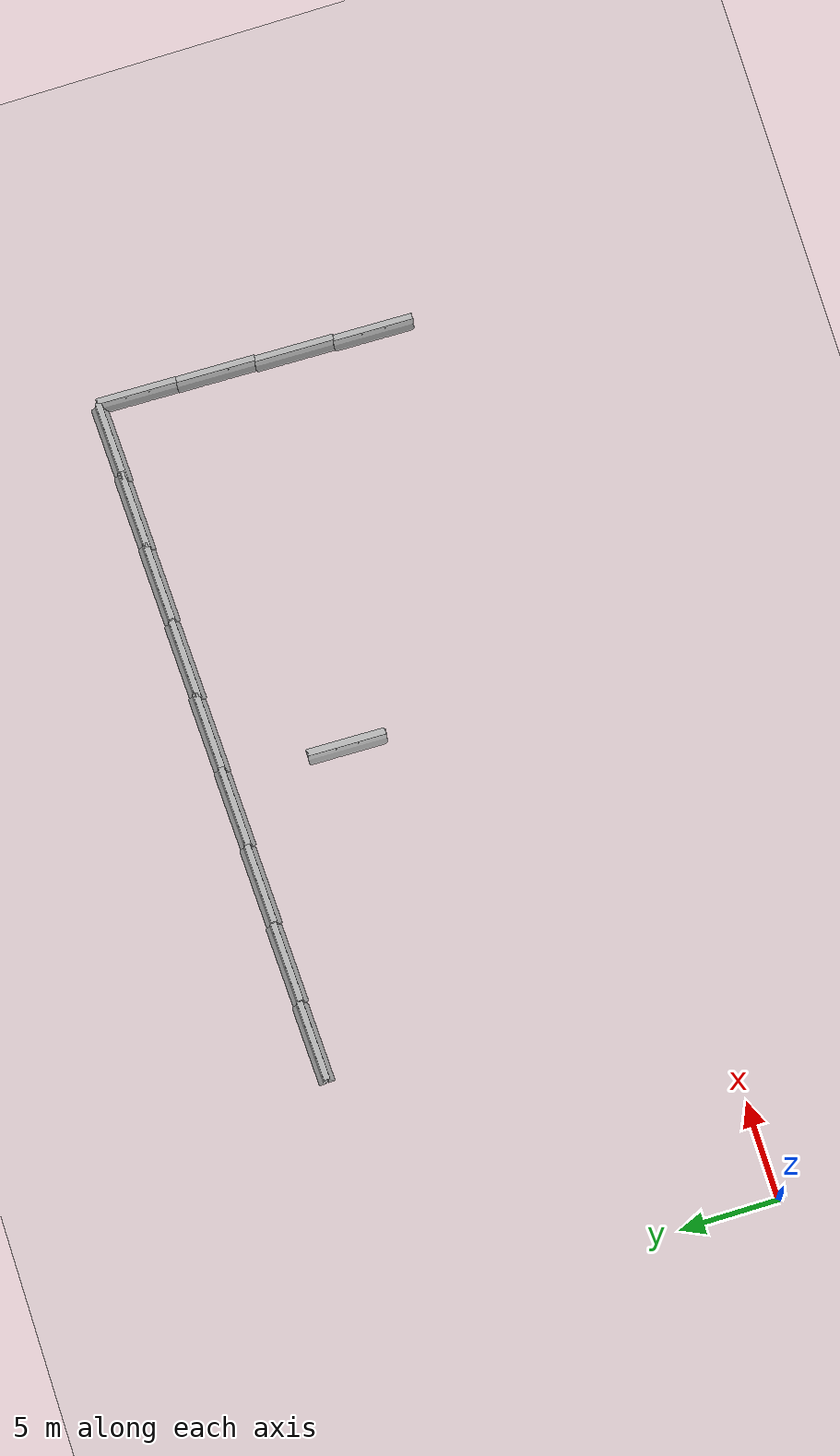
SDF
<sdf version="1.6">
 <world name="default">
  <model name="ground_plane">
   <static>1</static>
   <link name="link">
    <collision name="collision">
     <geometry><plane><normal>0 0 1</normal><size>100 100</size></plane></geometry>
     <surface><friction><ode><mu>100</mu><mu2>50</mu2></ode></friction></surface>
    </collision>
    <visual name="visual">
     <cast_shadows>0</cast_shadows>
     <geometry><plane><normal>0 0 1</normal><size>100 100</size></plane></geometry>
     <material>
      <script><uri>file://media/materials/scripts/gazebo.material</uri><name>Gazebo/Grey</name></script>
     </material>
    </visual>
   </link>
  </model>
  <model name="jersey_barrier_clone_clone_clone_3_clone_clone_2">
   <static>1</static>
   <link name="link">
    <visual name="visual">
     <geometry>
      <mesh><uri>model://jersey_barrier/meshes/jersey_barrier.dae</uri><scale>1 1 1</scale></mesh>
     </geometry>
    </visual>
    <collision name="upright">
     <pose>0 0 0.5715 0 -0 0</pose>
     <geometry><box><size>4.06542 0.3063 1.143</size></box></geometry>
    </collision>
    <collision name="base">
     <pose>0 0 0.032258 0 -0 0</pose>
     <geometry><box><size>4.06542 0.8107 0.064516</size></box></geometry>
    </collision>
    <collision name="base2">
     <pose>0 0 0.1 0 -0 0</pose>
     <geometry><box><size>4.06542 0.65 0.1</size></box></geometry>
    </collision>
    <collision name="base3">
     <pose>0 0 0.2 0 -0 0</pose>
     <geometry><box><size>4.06542 0.5 0.1</size></box></geometry>
    </collision>
    <collision name="left-angle">
     <pose>0 -0.224 0.2401 0.9 -0 0</pose>
     <geometry><box><size>4.06542 0.5 0.064516</size></box></geometry>
    </collision>
    <collision name="right-angle">
     <pose>0 0.224 0.2401 -0.9 0 0</pose>
     <geometry><box><size>4.06542 0.5 0.064516</size></box></geometry>
    </collision>
   </link>
   <pose>29.0417 12.8143 -8.43284 0 0 -1.5926</pose>
  </model>
  <model name="jersey_barrier_clone_clone_clone_clone_0">
   <static>1</static>
   <link name="link">
    <visual name="visual">
     <geometry>
      <mesh><uri>model://jersey_barrier/meshes/jersey_barrier.dae</uri><scale>1 1 1</scale></mesh>
     </geometry>
    </visual>
    <collision name="upright">
     <pose>0 0 0.5715 0 -0 0</pose>
     <geometry><box><size>4.06542 0.3063 1.143</size></box></geometry>
    </collision>
    <collision name="base">
     <pose>0 0 0.032258 0 -0 0</pose>
     <geometry><box><size>4.06542 0.8107 0.064516</size></box></geometry>
    </collision>
    <collision name="base2">
     <pose>0 0 0.1 0 -0 0</pose>
     <geometry><box><size>4.06542 0.65 0.1</size></box></geometry>
    </collision>
    <collision name="base3">
     <pose>0 0 0.2 0 -0 0</pose>
     <geometry><box><size>4.06542 0.5 0.1</size></box></geometry>
    </collision>
    <collision name="left-angle">
     <pose>0 -0.224 0.2401 0.9 -0 0</pose>
     <geometry><box><size>4.06542 0.5 0.064516</size></box></geometry>
    </collision>
    <collision name="right-angle">
     <pose>0 0.224 0.2401 -0.9 0 0</pose>
     <geometry><box><size>4.06542 0.5 0.064516</size></box></geometry>
    </collision>
   </link>
   <pose>26.0844 19.3245 0 0 -0 0.033275</pose>
  </model>
  <model name="jersey_barrier_clone_clone_clone_clone_0_clone">
   <static>1</static>
   <link name="link">
    <visual name="visual">
     <geometry>
      <mesh><uri>model://jersey_barrier/meshes/jersey_barrier.dae</uri><scale>1 1 1</scale></mesh>
     </geometry>
    </visual>
    <collision name="upright">
     <pose>0 0 0.5715 0 -0 0</pose>
     <geometry><box><size>4.06542 0.3063 1.143</size></box></geometry>
    </collision>
    <collision name="base">
     <pose>0 0 0.032258 0 -0 0</pose>
     <geometry><box><size>4.06542 0.8107 0.064516</size></box></geometry>
    </collision>
    <collision name="base2">
     <pose>0 0 0.1 0 -0 0</pose>
     <geometry><box><size>4.06542 0.65 0.1</size></box></geometry>
    </collision>
    <collision name="base3">
     <pose>0 0 0.2 0 -0 0</pose>
     <geometry><box><size>4.06542 0.5 0.1</size></box></geometry>
    </collision>
    <collision name="left-angle">
     <pose>0 -0.224 0.2401 0.9 -0 0</pose>
     <geometry><box><size>4.06542 0.5 0.064516</size></box></geometry>
    </collision>
    <collision name="right-angle">
     <pose>0 0.224 0.2401 -0.9 0 0</pose>
     <geometry><box><size>4.06542 0.5 0.064516</size></box></geometry>
    </collision>
   </link>
   <pose>22.068 19.2501 0 0 -0 0.033275</pose>
  </model>
  <model name="jersey_barrier_clone_clone_clone_clone_0_clone_0">
   <static>1</static>
   <link name="link">
    <visual name="visual">
     <geometry>
      <mesh><uri>model://jersey_barrier/meshes/jersey_barrier.dae</uri><scale>1 1 1</scale></mesh>
     </geometry>
    </visual>
    <collision name="upright">
     <pose>0 0 0.5715 0 -0 0</pose>
     <geometry><box><size>4.06542 0.3063 1.143</size></box></geometry>
    </collision>
    <collision name="base">
     <pose>0 0 0.032258 0 -0 0</pose>
     <geometry><box><size>4.06542 0.8107 0.064516</size></box></geometry>
    </collision>
    <collision name="base2">
     <pose>0 0 0.1 0 -0 0</pose>
     <geometry><box><size>4.06542 0.65 0.1</size></box></geometry>
    </collision>
    <collision name="base3">
     <pose>0 0 0.2 0 -0 0</pose>
     <geometry><box><size>4.06542 0.5 0.1</size></box></geometry>
    </collision>
    <collision name="left-angle">
     <pose>0 -0.224 0.2401 0.9 -0 0</pose>
     <geometry><box><size>4.06542 0.5 0.064516</size></box></geometry>
    </collision>
    <collision name="right-angle">
     <pose>0 0.224 0.2401 -0.9 0 0</pose>
     <geometry><box><size>4.06542 0.5 0.064516</size></box></geometry>
    </collision>
   </link>
   <pose>18.0097 19.1749 0 0 -0 0.033275</pose>
  </model>
  <model name="jersey_barrier_clone_clone_clone_clone_0_clone_0_clone">
   <static>1</static>
   <link name="link">
    <visual name="visual">
     <geometry>
      <mesh><uri>model://jersey_barrier/meshes/jersey_barrier.dae</uri><scale>1 1 1</scale></mesh>
     </geometry>
    </visual>
    <collision name="upright">
     <pose>0 0 0.5715 0 -0 0</pose>
     <geometry><box><size>4.06542 0.3063 1.143</size></box></geometry>
    </collision>
    <collision name="base">
     <pose>0 0 0.032258 0 -0 0</pose>
     <geometry><box><size>4.06542 0.8107 0.064516</size></box></geometry>
    </collision>
    <collision name="base2">
     <pose>0 0 0.1 0 -0 0</pose>
     <geometry><box><size>4.06542 0.65 0.1</size></box></geometry>
    </collision>
    <collision name="base3">
     <pose>0 0 0.2 0 -0 0</pose>
     <geometry><box><size>4.06542 0.5 0.1</size></box></geometry>
    </collision>
    <collision name="left-angle">
     <pose>0 -0.224 0.2401 0.9 -0 0</pose>
     <geometry><box><size>4.06542 0.5 0.064516</size></box></geometry>
    </collision>
    <collision name="right-angle">
     <pose>0 0.224 0.2401 -0.9 0 0</pose>
     <geometry><box><size>4.06542 0.5 0.064516</size></box></geometry>
    </collision>
   </link>
   <pose>13.949 19.1026 0 0 -0 0.033275</pose>
  </model>
  <model name="jersey_barrier_clone_clone_clone_clone_clone_2">
   <static>1</static>
   <link name="link">
    <visual name="visual">
     <geometry>
      <mesh><uri>model://jersey_barrier/meshes/jersey_barrier.dae</uri><scale>1 1 1</scale></mesh>
     </geometry>
    </visual>
    <collision name="upright">
     <pose>0 0 0.5715 0 -0 0</pose>
     <geometry><box><size>4.06542 0.3063 1.143</size></box></geometry>
    </collision>
    <collision name="base">
     <pose>0 0 0.032258 0 -0 0</pose>
     <geometry><box><size>4.06542 0.8107 0.064516</size></box></geometry>
    </collision>
    <collision name="base2">
     <pose>0 0 0.1 0 -0 0</pose>
     <geometry><box><size>4.06542 0.65 0.1</size></box></geometry>
    </collision>
    <collision name="base3">
     <pose>0 0 0.2 0 -0 0</pose>
     <geometry><box><size>4.06542 0.5 0.1</size></box></geometry>
    </collision>
    <collision name="left-angle">
     <pose>0 -0.224 0.2401 0.9 -0 0</pose>
     <geometry><box><size>4.06542 0.5 0.064516</size></box></geometry>
    </collision>
    <collision name="right-angle">
     <pose>0 0.224 0.2401 -0.9 0 0</pose>
     <geometry><box><size>4.06542 0.5 0.064516</size></box></geometry>
    </collision>
   </link>
   <pose>29.9689 19.42 0 0 -0 0.033275</pose>
  </model>
  <model name="jersey_barrier_clone_clone_clone_clone_clone_3">
   <static>1</static>
   <link name="link">
    <visual name="visual">
     <geometry>
      <mesh><uri>model://jersey_barrier/meshes/jersey_barrier.dae</uri><scale>1 1 1</scale></mesh>
     </geometry>
    </visual>
    <collision name="upright">
     <pose>0 0 0.5715 0 -0 0</pose>
     <geometry><box><size>4.06542 0.3063 1.143</size></box></geometry>
    </collision>
    <collision name="base">
     <pose>0 0 0.032258 0 -0 0</pose>
     <geometry><box><size>4.06542 0.8107 0.064516</size></box></geometry>
    </collision>
    <collision name="base2">
     <pose>0 0 0.1 0 -0 0</pose>
     <geometry><box><size>4.06542 0.65 0.1</size></box></geometry>
    </collision>
    <collision name="base3">
     <pose>0 0 0.2 0 -0 0</pose>
     <geometry><box><size>4.06542 0.5 0.1</size></box></geometry>
    </collision>
    <collision name="left-angle">
     <pose>0 -0.224 0.2401 0.9 -0 0</pose>
     <geometry><box><size>4.06542 0.5 0.064516</size></box></geometry>
    </collision>
    <collision name="right-angle">
     <pose>0 0.224 0.2401 -0.9 0 0</pose>
     <geometry><box><size>4.06542 0.5 0.064516</size></box></geometry>
    </collision>
   </link>
   <pose>33.7558 19.4801 0 0 -0 0.033275</pose>
  </model>
  <model name="jersey_barrier_clone_clone_clone_clone_clone_4">
   <static>1</static>
   <link name="link">
    <visual name="visual">
     <geometry>
      <mesh><uri>model://jersey_barrier/meshes/jersey_barrier.dae</uri><scale>1 1 1</scale></mesh>
     </geometry>
    </visual>
    <collision name="upright">
     <pose>0 0 0.5715 0 -0 0</pose>
     <geometry><box><size>4.06542 0.3063 1.143</size></box></geometry>
    </collision>
    <collision name="base">
     <pose>0 0 0.032258 0 -0 0</pose>
     <geometry><box><size>4.06542 0.8107 0.064516</size></box></geometry>
    </collision>
    <collision name="base2">
     <pose>0 0 0.1 0 -0 0</pose>
     <geometry><box><size>4.06542 0.65 0.1</size></box></geometry>
    </collision>
    <collision name="base3">
     <pose>0 0 0.2 0 -0 0</pose>
     <geometry><box><size>4.06542 0.5 0.1</size></box></geometry>
    </collision>
    <collision name="left-angle">
     <pose>0 -0.224 0.2401 0.9 -0 0</pose>
     <geometry><box><size>4.06542 0.5 0.064516</size></box></geometry>
    </collision>
    <collision name="right-angle">
     <pose>0 0.224 0.2401 -0.9 0 0</pose>
     <geometry><box><size>4.06542 0.5 0.064516</size></box></geometry>
    </collision>
   </link>
   <pose>37.8447 19.5701 0 0 -0 0.033275</pose>
  </model>
  <model name="jersey_barrier_clone_clone_clone_clone_clone_5">
   <static>1</static>
   <link name="link">
    <visual name="visual">
     <geometry>
      <mesh><uri>model://jersey_barrier/meshes/jersey_barrier.dae</uri><scale>1 1 1</scale></mesh>
     </geometry>
    </visual>
    <collision name="upright">
     <pose>0 0 0.5715 0 -0 0</pose>
     <geometry><box><size>4.06542 0.3063 1.143</size></box></geometry>
    </collision>
    <collision name="base">
     <pose>0 0 0.032258 0 -0 0</pose>
     <geometry><box><size>4.06542 0.8107 0.064516</size></box></geometry>
    </collision>
    <collision name="base2">
     <pose>0 0 0.1 0 -0 0</pose>
     <geometry><box><size>4.06542 0.65 0.1</size></box></geometry>
    </collision>
    <collision name="base3">
     <pose>0 0 0.2 0 -0 0</pose>
     <geometry><box><size>4.06542 0.5 0.1</size></box></geometry>
    </collision>
    <collision name="left-angle">
     <pose>0 -0.224 0.2401 0.9 -0 0</pose>
     <geometry><box><size>4.06542 0.5 0.064516</size></box></geometry>
    </collision>
    <collision name="right-angle">
     <pose>0 0.224 0.2401 -0.9 0 0</pose>
     <geometry><box><size>4.06542 0.5 0.064516</size></box></geometry>
    </collision>
   </link>
   <pose>41.6101 19.6602 0 0 -0 0.033275</pose>
  </model>
  <model name="jersey_barrier_clone_clone_clone_clone_clone_6">
   <static>1</static>
   <link name="link">
    <visual name="visual">
     <geometry>
      <mesh><uri>model://jersey_barrier/meshes/jersey_barrier.dae</uri><scale>1 1 1</scale></mesh>
     </geometry>
    </visual>
    <collision name="upright">
     <pose>0 0 0.5715 0 -0 0</pose>
     <geometry><box><size>4.06542 0.3063 1.143</size></box></geometry>
    </collision>
    <collision name="base">
     <pose>0 0 0.032258 0 -0 0</pose>
     <geometry><box><size>4.06542 0.8107 0.064516</size></box></geometry>
    </collision>
    <collision name="base2">
     <pose>0 0 0.1 0 -0 0</pose>
     <geometry><box><size>4.06542 0.65 0.1</size></box></geometry>
    </collision>
    <collision name="base3">
     <pose>0 0 0.2 0 -0 0</pose>
     <geometry><box><size>4.06542 0.5 0.1</size></box></geometry>
    </collision>
    <collision name="left-angle">
     <pose>0 -0.224 0.2401 0.9 -0 0</pose>
     <geometry><box><size>4.06542 0.5 0.064516</size></box></geometry>
    </collision>
    <collision name="right-angle">
     <pose>0 0.224 0.2401 -0.9 0 0</pose>
     <geometry><box><size>4.06542 0.5 0.064516</size></box></geometry>
    </collision>
   </link>
   <pose>45.2201 19.7211 0 0 -0 0.033275</pose>
  </model>
  <model name="jersey_barrier_clone_clone_clone_3_clone_clone_3_clone">
   <static>1</static>
   <link name="link">
    <visual name="visual">
     <geometry>
      <mesh><uri>model://jersey_barrier/meshes/jersey_barrier.dae</uri><scale>1 1 1</scale></mesh>
     </geometry>
    </visual>
    <collision name="upright">
     <pose>0 0 0.5715 0 -0 0</pose>
     <geometry><box><size>4.06542 0.3063 1.143</size></box></geometry>
    </collision>
    <collision name="base">
     <pose>0 0 0.032258 0 -0 0</pose>
     <geometry><box><size>4.06542 0.8107 0.064516</size></box></geometry>
    </collision>
    <collision name="base2">
     <pose>0 0 0.1 0 -0 0</pose>
     <geometry><box><size>4.06542 0.65 0.1</size></box></geometry>
    </collision>
    <collision name="base3">
     <pose>0 0 0.2 0 -0 0</pose>
     <geometry><box><size>4.06542 0.5 0.1</size></box></geometry>
    </collision>
    <collision name="left-angle">
     <pose>0 -0.224 0.2401 0.9 -0 0</pose>
     <geometry><box><size>4.06542 0.5 0.064516</size></box></geometry>
    </collision>
    <collision name="right-angle">
     <pose>0 0.224 0.2401 -0.9 0 0</pose>
     <geometry><box><size>4.06542 0.5 0.064516</size></box></geometry>
    </collision>
   </link>
   <pose>47.2798 17.8016 0 0 0 -1.5926</pose>
  </model>
  <model name="jersey_barrier_clone_clone_clone_3_clone_clone_3_clone_0">
   <static>1</static>
   <link name="link">
    <visual name="visual">
     <geometry>
      <mesh><uri>model://jersey_barrier/meshes/jersey_barrier.dae</uri><scale>1 1 1</scale></mesh>
     </geometry>
    </visual>
    <collision name="upright">
     <pose>0 0 0.5715 0 -0 0</pose>
     <geometry><box><size>4.06542 0.3063 1.143</size></box></geometry>
    </collision>
    <collision name="base">
     <pose>0 0 0.032258 0 -0 0</pose>
     <geometry><box><size>4.06542 0.8107 0.064516</size></box></geometry>
    </collision>
    <collision name="base2">
     <pose>0 0 0.1 0 -0 0</pose>
     <geometry><box><size>4.06542 0.65 0.1</size></box></geometry>
    </collision>
    <collision name="base3">
     <pose>0 0 0.2 0 -0 0</pose>
     <geometry><box><size>4.06542 0.5 0.1</size></box></geometry>
    </collision>
    <collision name="left-angle">
     <pose>0 -0.224 0.2401 0.9 -0 0</pose>
     <geometry><box><size>4.06542 0.5 0.064516</size></box></geometry>
    </collision>
    <collision name="right-angle">
     <pose>0 0.224 0.2401 -0.9 0 0</pose>
     <geometry><box><size>4.06542 0.5 0.064516</size></box></geometry>
    </collision>
   </link>
   <pose>47.176 13.8067 0 0 0 -1.5926</pose>
  </model>
  <model name="jersey_barrier_clone_clone_clone_3_clone_clone_3_clone_1">
   <static>1</static>
   <link name="link">
    <visual name="visual">
     <geometry>
      <mesh><uri>model://jersey_barrier/meshes/jersey_barrier.dae</uri><scale>1 1 1</scale></mesh>
     </geometry>
    </visual>
    <collision name="upright">
     <pose>0 0 0.5715 0 -0 0</pose>
     <geometry><box><size>4.06542 0.3063 1.143</size></box></geometry>
    </collision>
    <collision name="base">
     <pose>0 0 0.032258 0 -0 0</pose>
     <geometry><box><size>4.06542 0.8107 0.064516</size></box></geometry>
    </collision>
    <collision name="base2">
     <pose>0 0 0.1 0 -0 0</pose>
     <geometry><box><size>4.06542 0.65 0.1</size></box></geometry>
    </collision>
    <collision name="base3">
     <pose>0 0 0.2 0 -0 0</pose>
     <geometry><box><size>4.06542 0.5 0.1</size></box></geometry>
    </collision>
    <collision name="left-angle">
     <pose>0 -0.224 0.2401 0.9 -0 0</pose>
     <geometry><box><size>4.06542 0.5 0.064516</size></box></geometry>
    </collision>
    <collision name="right-angle">
     <pose>0 0.224 0.2401 -0.9 0 0</pose>
     <geometry><box><size>4.06542 0.5 0.064516</size></box></geometry>
    </collision>
   </link>
   <pose>47.0245 9.81936 0 0 0 -1.5926</pose>
  </model>
  <model name="jersey_barrier_clone_clone_clone_3_clone_clone_3_clone_2">
   <static>1</static>
   <link name="link">
    <visual name="visual">
     <geometry>
      <mesh><uri>model://jersey_barrier/meshes/jersey_barrier.dae</uri><scale>1 1 1</scale></mesh>
     </geometry>
    </visual>
    <collision name="upright">
     <pose>0 0 0.5715 0 -0 0</pose>
     <geometry><box><size>4.06542 0.3063 1.143</size></box></geometry>
    </collision>
    <collision name="base">
     <pose>0 0 0.032258 0 -0 0</pose>
     <geometry><box><size>4.06542 0.8107 0.064516</size></box></geometry>
    </collision>
    <collision name="base2">
     <pose>0 0 0.1 0 -0 0</pose>
     <geometry><box><size>4.06542 0.65 0.1</size></box></geometry>
    </collision>
    <collision name="base3">
     <pose>0 0 0.2 0 -0 0</pose>
     <geometry><box><size>4.06542 0.5 0.1</size></box></geometry>
    </collision>
    <collision name="left-angle">
     <pose>0 -0.224 0.2401 0.9 -0 0</pose>
     <geometry><box><size>4.06542 0.5 0.064516</size></box></geometry>
    </collision>
    <collision name="right-angle">
     <pose>0 0.224 0.2401 -0.9 0 0</pose>
     <geometry><box><size>4.06542 0.5 0.064516</size></box></geometry>
    </collision>
   </link>
   <pose>46.8731 5.83194 0 0 0 -1.5926</pose>
  </model>
 </world>
</sdf>
